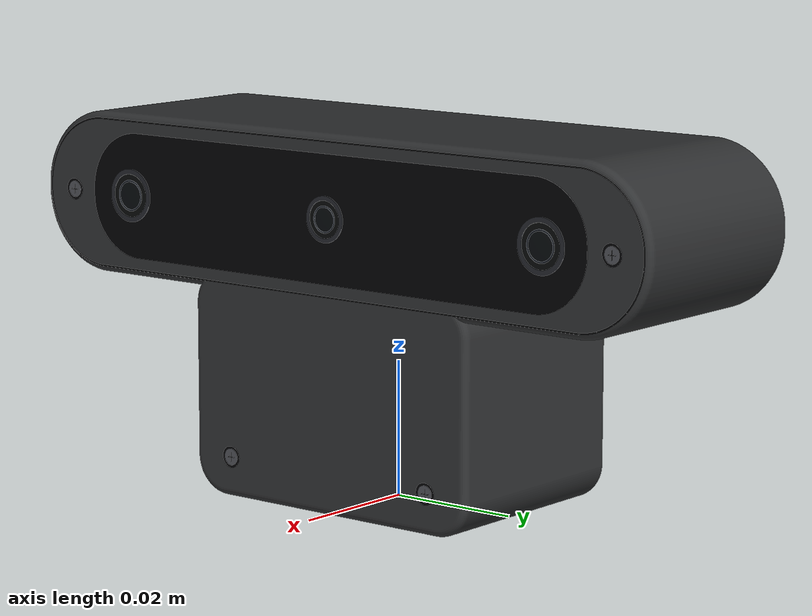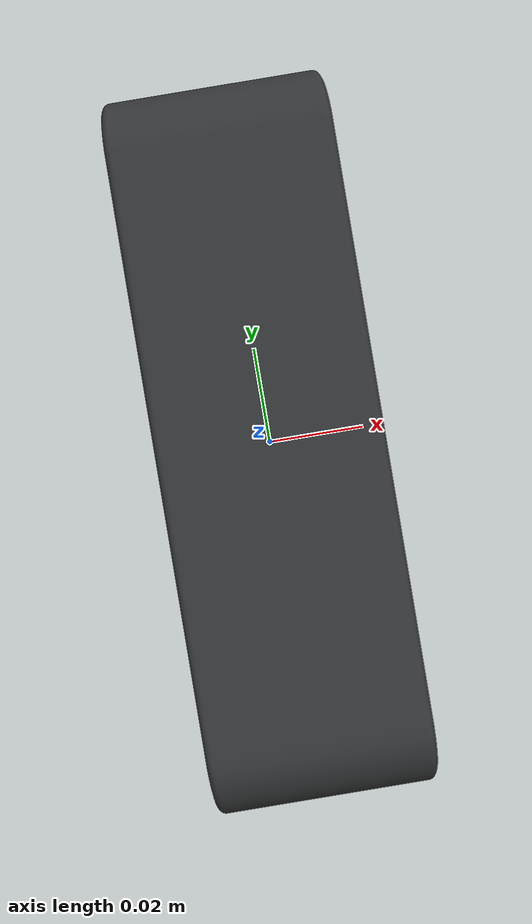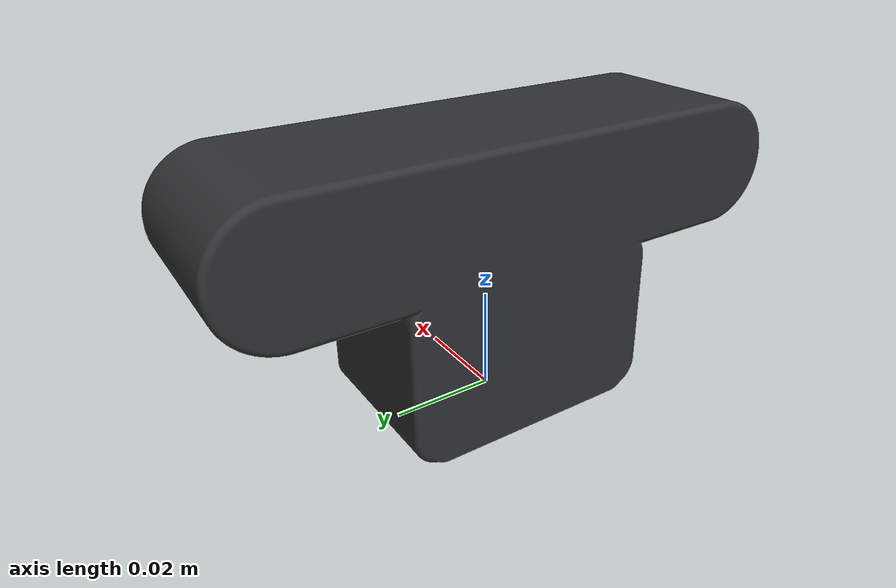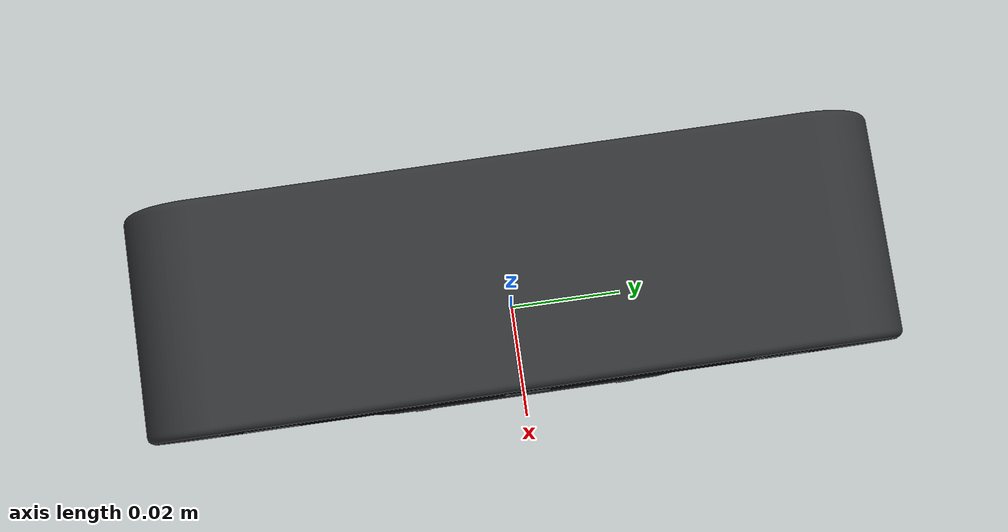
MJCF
<?xml version='1.0' encoding='utf-8'?>
<mujoco model="insta360_oak_d">
  <!--Independent approximate geometry; fixed sites are geometric references, not calibrated optical frames.-->
  <compiler angle="radian" inertiafromgeom="false" strippath="false" />
  <option timestep="0.002" gravity="0 0 -9.81" />
  <asset>
    <mesh name="oak_d_visual_mesh_0" file="../assets/meshes/visual/contact_gold.obj" scale="1 1 1" inertia="shell" />
    <mesh name="oak_d_visual_mesh_1" file="../assets/meshes/visual/glass_coating.obj" scale="1 1 1" inertia="shell" />
    <mesh name="oak_d_visual_mesh_2" file="../assets/meshes/visual/housing.obj" scale="1 1 1" inertia="shell" />
    <mesh name="oak_d_visual_mesh_3" file="../assets/meshes/visual/lens_ring.obj" scale="1 1 1" inertia="shell" />
    <mesh name="oak_d_visual_mesh_4" file="../assets/meshes/visual/markings.obj" scale="1 1 1" inertia="shell" />
    <mesh name="oak_d_visual_mesh_5" file="../assets/meshes/visual/optical_glass.obj" scale="1 1 1" inertia="shell" />
    <mesh name="oak_d_visual_mesh_6" file="../assets/meshes/visual/rubber.obj" scale="1 1 1" inertia="shell" />
    <mesh name="oak_d_visual_mesh_7" file="../assets/meshes/visual/screw_metal.obj" scale="1 1 1" inertia="shell" />
    <mesh name="oak_d_visual_mesh_8" file="../assets/meshes/visual/seam.obj" scale="1 1 1" inertia="shell" />
    <mesh name="oak_d_collision_mesh_0" file="../assets/meshes/collision/body.stl" scale="1 1 1" inertia="convex" />
    <mesh name="oak_d_collision_mesh_1" file="../assets/meshes/collision/body_bar.stl" scale="1 1 1" inertia="convex" />
    <mesh name="oak_d_collision_mesh_2" file="../assets/meshes/collision/body_stem.stl" scale="1 1 1" inertia="convex" />
  </asset>
  <worldbody>
    <body name="oak_d_link">
      <inertial pos="0 0 0.02725" mass="0.115" diaginertia="0.000144423229167 3.89011458333e-05 0.000126394583333" quat="1 0 0 0" />
      <geom name="oak_d_visual_0" type="mesh" mesh="oak_d_visual_mesh_0" pos="0 0 0" quat="1 0 0 0" density="0" group="2" contype="0" conaffinity="0" rgba="0.64 0.48 0.2 1" />
      <geom name="oak_d_visual_1" type="mesh" mesh="oak_d_visual_mesh_1" pos="0 0 0" quat="1 0 0 0" density="0" group="2" contype="0" conaffinity="0" rgba="0.075 0.09 0.125 1" />
      <geom name="oak_d_visual_2" type="mesh" mesh="oak_d_visual_mesh_2" pos="0 0 0" quat="1 0 0 0" density="0" group="2" contype="0" conaffinity="0" rgba="0.19 0.195 0.2 1" />
      <geom name="oak_d_visual_3" type="mesh" mesh="oak_d_visual_mesh_3" pos="0 0 0" quat="1 0 0 0" density="0" group="2" contype="0" conaffinity="0" rgba="0.14 0.15 0.17 1" />
      <geom name="oak_d_visual_4" type="mesh" mesh="oak_d_visual_mesh_4" pos="0 0 0" quat="1 0 0 0" density="0" group="2" contype="0" conaffinity="0" rgba="0.74 0.75 0.76 1" />
      <geom name="oak_d_visual_5" type="mesh" mesh="oak_d_visual_mesh_5" pos="0 0 0" quat="1 0 0 0" density="0" group="2" contype="0" conaffinity="0" rgba="0.021 0.035 0.044 1" />
      <geom name="oak_d_visual_6" type="mesh" mesh="oak_d_visual_mesh_6" pos="0 0 0" quat="1 0 0 0" density="0" group="2" contype="0" conaffinity="0" rgba="0.027 0.029 0.032 1" />
      <geom name="oak_d_visual_7" type="mesh" mesh="oak_d_visual_mesh_7" pos="0 0 0" quat="1 0 0 0" density="0" group="2" contype="0" conaffinity="0" rgba="0.31 0.32 0.34 1" />
      <geom name="oak_d_visual_8" type="mesh" mesh="oak_d_visual_mesh_8" pos="0 0 0" quat="1 0 0 0" density="0" group="2" contype="0" conaffinity="0" rgba="0.008 0.009 0.012 1" />
      <geom name="oak_d_collision_0" type="mesh" mesh="oak_d_collision_mesh_0" pos="0 0 0" quat="1 0 0 0" density="0" group="3" contype="1" conaffinity="1" rgba="0 0 0 0" />
      <geom name="oak_d_collision_1" type="mesh" mesh="oak_d_collision_mesh_1" pos="0 0 0" quat="1 0 0 0" density="0" group="3" contype="1" conaffinity="1" rgba="0 0 0 0" />
      <geom name="oak_d_collision_2" type="mesh" mesh="oak_d_collision_mesh_2" pos="0 0 0" quat="1 0 0 0" density="0" group="3" contype="1" conaffinity="1" rgba="0 0 0 0" />
      <site name="oak_d_mount" pos="0 0 0" quat="1 0 0 0" type="sphere" size="0.001" group="4" rgba="0 0 0 0" />
      <site name="oak_d_left_lens_surface" pos="0.0165 -0.0375 0.0425" quat="0.500000000002 -0.5 0.499999999998 -0.5" type="sphere" size="0.001" group="4" rgba="0 0 0 0" />
      <site name="oak_d_rgb_lens_surface" pos="0.0165 0 0.0425" quat="0.500000000002 -0.5 0.499999999998 -0.5" type="sphere" size="0.001" group="4" rgba="0 0 0 0" />
      <site name="oak_d_right_lens_surface" pos="0.0165 0.0375 0.0425" quat="0.500000000002 -0.5 0.499999999998 -0.5" type="sphere" size="0.001" group="4" rgba="0 0 0 0" />
    </body>
  </worldbody>
</mujoco>
